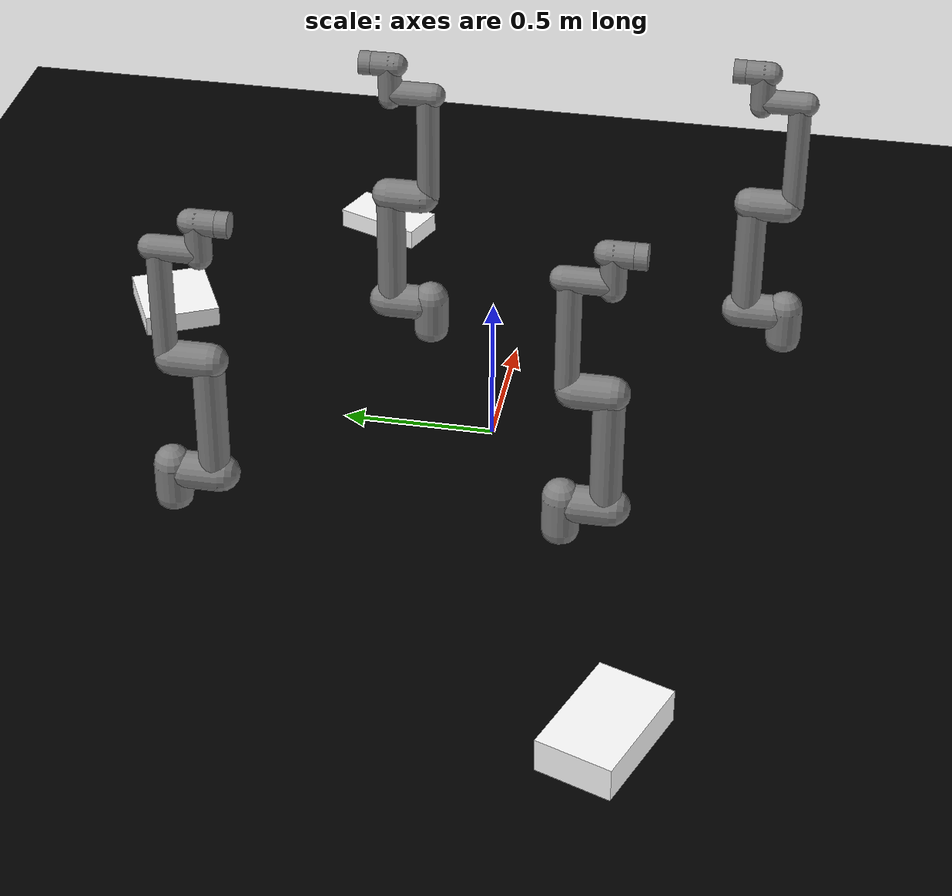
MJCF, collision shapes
<mujoco model="ur5e scene">

  <include file="/home/tapasdeveloper/Desktop/msc_thesis/wenkai/mujoco_simulation/unified_scene/ur5e_4.xml" />
  <include file="/home/tapasdeveloper/Desktop/msc_thesis/wenkai/mujoco_simulation/unified_scene/objs_3.xml" />

  <statistic center="0.3 0 0.4" extent="0.8" />

  <visual>
    <headlight diffuse="0.6 0.6 0.6" ambient="0.1 0.1 0.1" specular="0 0 0" />
    <rgba haze="0.15 0.25 0.35 1" />
    <global azimuth="120" elevation="-20" />
  </visual>

  <asset>
    <texture type="skybox" builtin="gradient" rgb1="0.3 0.5 0.7" rgb2="0 0 0" width="512" height="3072" />
    <texture type="2d" name="groundplane" builtin="checker" mark="edge" rgb1="0.2 0.3 0.4" rgb2="0.1 0.2 0.3" markrgb="0.8 0.8 0.8" width="300" height="300" />
    <material name="groundplane" texture="groundplane" texuniform="true" texrepeat="5 5" reflectance="0.2" />
  </asset>

  <worldbody>
    <light pos="0 0 1.5" dir="0 0 -1" directional="true" />
    <geom name="floor" size="0 0 0.05" type="plane" material="groundplane" />

    <body name="invisible_floor" pos="0 0 0.025">
      <geom type="box" size="10 10 0.01" rgba="0 0 0 0" contype="1" conaffinity="1" />
    </body>
  </worldbody>

  <contact>
    <exclude body1="base" body2="invisible_floor" />
    <exclude body1="base_1" body2="invisible_floor" />
    <exclude body1="base_2" body2="invisible_floor" />
    <exclude body1="base_3" body2="invisible_floor" />
    <exclude body1="shoulder_link" body2="invisible_floor" />
    <exclude body1="shoulder_link_1" body2="invisible_floor" />
    <exclude body1="shoulder_link_2" body2="invisible_floor" />
    <exclude body1="shoulder_link_3" body2="invisible_floor" />
  </contact>
</mujoco>

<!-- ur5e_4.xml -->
<mujoco model="ur5e">
  <compiler angle="radian" meshdir="ur5e_assets" autolimits="true" />

  <option integrator="implicitfast" />

  <default>
    <default class="ur5e">
      <material specular="0.5" shininess="0.25" />
      <joint axis="0 1 0" range="-6.28319 6.28319" armature="0.1" />
      <general gaintype="fixed" biastype="affine" ctrlrange="-6.2831 6.2831" gainprm="2000" biasprm="0 -2000 -400" forcerange="-150 150" />
      <default class="size3">
        <default class="size3_limited">
          <joint range="-3.1415 3.1415" />
          <general ctrlrange="-3.1415 3.1415" />
        </default>
      </default>
      <default class="size1">
        <general gainprm="500" biasprm="0 -500 -100" forcerange="-28 28" />
      </default>
      <default class="visual">
        <geom type="mesh" contype="0" conaffinity="0" group="2" />
      </default>
      <default class="collision">
        <geom type="capsule" group="3" />
        <default class="eef_collision">
          <geom type="cylinder" />
        </default>
      </default>
      <site size="0.001" rgba="0.5 0.5 0.5 0.3" group="4" />
    </default>
  </default>

  <asset>
    <material class="ur5e" name="black" rgba="0.033 0.033 0.033 1" />
    <material class="ur5e" name="jointgray" rgba="0.278 0.278 0.278 1" />
    <material class="ur5e" name="linkgray" rgba="0.82 0.82 0.82 1" />
    <material class="ur5e" name="urblue" rgba="0.49 0.678 0.8 1" />

    <mesh file="base_0.obj" />
    <mesh file="base_1.obj" />
    <mesh file="shoulder_0.obj" />
    <mesh file="shoulder_1.obj" />
    <mesh file="shoulder_2.obj" />
    <mesh file="upperarm_0.obj" />
    <mesh file="upperarm_1.obj" />
    <mesh file="upperarm_2.obj" />
    <mesh file="upperarm_3.obj" />
    <mesh file="forearm_0.obj" />
    <mesh file="forearm_1.obj" />
    <mesh file="forearm_2.obj" />
    <mesh file="forearm_3.obj" />
    <mesh file="wrist1_0.obj" />
    <mesh file="wrist1_1.obj" />
    <mesh file="wrist1_2.obj" />
    <mesh file="wrist2_0.obj" />
    <mesh file="wrist2_1.obj" />
    <mesh file="wrist2_2.obj" />
    <mesh file="wrist3.obj" />
  </asset>

  <worldbody>
    <light name="spotlight" mode="targetbodycom" target="wrist_2_link" pos="0 -1 2" />
    <body name="base" pos="0.6598434875933261 -0.9163550373007783 0.0" quat="6.123233995736766e-17 0.0 0.0 1.0" childclass="ur5e">
      <inertial mass="4.0" pos="0 0 0" diaginertia="0.00443333156 0.00443333156 0.0072" />
      <geom mesh="base_0" material="black" class="visual" />
      <geom mesh="base_1" material="jointgray" class="visual" />
      <body name="shoulder_link" pos="0 0 0.163" quat="0 0 0 1">
        <inertial mass="3.7" pos="0 0 0" diaginertia="0.0102675 0.0102675 0.00666" />
        <joint name="shoulder_pan_joint" class="size3" axis="0 0 1" />
        <geom mesh="shoulder_0" material="urblue" class="visual" />
        <geom mesh="shoulder_1" material="black" class="visual" />
        <geom mesh="shoulder_2" material="jointgray" class="visual" />
        <geom class="collision" size="0.06 0.06" pos="0 0 -0.04" />
        <body name="upper_arm_link" pos="0 0.138 0" quat="1 0 0 0">
          <inertial mass="8.393" pos="0 0 0.2125" diaginertia="0.133886 0.133886 0.0151074" />
          <joint name="shoulder_lift_joint" class="size3" />
          <geom mesh="upperarm_0" material="linkgray" class="visual" />
          <geom mesh="upperarm_1" material="black" class="visual" />
          <geom mesh="upperarm_2" material="jointgray" class="visual" />
          <geom mesh="upperarm_3" material="urblue" class="visual" />
          <geom class="collision" pos="0 -0.04 0" quat="1 1 0 0" size="0.06 0.06" />
          <geom class="collision" size="0.05 0.2" pos="0 0 0.2" />
          <body name="forearm_link" pos="0 -0.131 0.425">
            <inertial mass="2.275" pos="0 0 0.196" diaginertia="0.0311796 0.0311796 0.004095" />
            <joint name="elbow_joint" class="size3_limited" />
            <geom mesh="forearm_0" material="urblue" class="visual" />
            <geom mesh="forearm_1" material="linkgray" class="visual" />
            <geom mesh="forearm_2" material="black" class="visual" />
            <geom mesh="forearm_3" material="jointgray" class="visual" />
            <geom class="collision" pos="0 0.08 0" quat="1 1 0 0" size="0.055 0.06" />
            <geom class="collision" size="0.038 0.19" pos="0 0 0.2" />
            <body name="wrist_1_link" pos="0 0 0.392" quat="1 0 0 0">
              <inertial mass="1.219" pos="0 0.127 0" diaginertia="0.0025599 0.0025599 0.0021942" />
              <joint name="wrist_1_joint" class="size1" />
              <geom mesh="wrist1_0" material="black" class="visual" />
              <geom mesh="wrist1_1" material="urblue" class="visual" />
              <geom mesh="wrist1_2" material="jointgray" class="visual" />
              <geom class="collision" pos="0 0.05 0" quat="1 1 0 0" size="0.04 0.07" />
              <body name="wrist_2_link" pos="0 0.127 0">
                <inertial mass="1.219" pos="0 0 0.1" diaginertia="0.0025599 0.0025599 0.0021942" />
                <joint name="wrist_2_joint" axis="0 0 1" class="size1" />
                <geom mesh="wrist2_0" material="black" class="visual" />
                <geom mesh="wrist2_1" material="urblue" class="visual" />
                <geom mesh="wrist2_2" material="jointgray" class="visual" />
                <geom class="collision" size="0.04 0.06" pos="0 0 0.04" />
                <geom class="collision" pos="0 0.02 0.1" quat="1 1 0 0" size="0.04 0.04" />
                <body name="wrist_3_link" pos="0 0 0.1">
                  <inertial mass="0.1889" pos="0 0.0771683 0" quat="1 0 0 1" diaginertia="0.000132134 9.90863e-05 9.90863e-05" />
                  <joint name="wrist_3_joint" class="size1" />
                  <geom material="linkgray" mesh="wrist3" class="visual" />
                  <geom class="eef_collision" pos="0 0.08 0" quat="1 1 0 0" size="0.04 0.02" />
                  <site name="attachment_site" pos="0 0.1 0" quat="-1 1 0 0" />
                </body>
              </body>
            </body>
          </body>
        </body>
      </body>
    </body>

    <body name="base_1" pos="-0.6022929315226149 0.9240593326658415 0.0" quat="1.0 0.0 0.0 0.0" childclass="ur5e">
      <inertial mass="4.0" pos="0 0 0" diaginertia="0.00443333156 0.00443333156 0.0072" />
      <geom mesh="base_0" material="black" class="visual" />
      <geom mesh="base_1" material="jointgray" class="visual" />
      <body name="shoulder_link_1" pos="0 0 0.163" quat="0 0 0 1">
        <inertial mass="3.7" pos="0 0 0" diaginertia="0.0102675 0.0102675 0.00666" />
        <joint name="shoulder_pan_joint_1" class="size3" axis="0 0 1" />
        <geom mesh="shoulder_0" material="urblue" class="visual" />
        <geom mesh="shoulder_1" material="black" class="visual" />
        <geom mesh="shoulder_2" material="jointgray" class="visual" />
        <geom class="collision" size="0.06 0.06" pos="0 0 -0.04" />
        <body name="upper_arm_link_1" pos="0 0.138 0" quat="1 0 0 0">
          <inertial mass="8.393" pos="0 0 0.2125" diaginertia="0.133886 0.133886 0.0151074" />
          <joint name="shoulder_lift_joint_1" class="size3" />
          <geom mesh="upperarm_0" material="linkgray" class="visual" />
          <geom mesh="upperarm_1" material="black" class="visual" />
          <geom mesh="upperarm_2" material="jointgray" class="visual" />
          <geom mesh="upperarm_3" material="urblue" class="visual" />
          <geom class="collision" pos="0 -0.04 0" quat="1 1 0 0" size="0.06 0.06" />
          <geom class="collision" size="0.05 0.2" pos="0 0 0.2" />
          <body name="forearm_link_1" pos="0 -0.131 0.425">
            <inertial mass="2.275" pos="0 0 0.196" diaginertia="0.0311796 0.0311796 0.004095" />
            <joint name="elbow_joint_1" class="size3_limited" />
            <geom mesh="forearm_0" material="urblue" class="visual" />
            <geom mesh="forearm_1" material="linkgray" class="visual" />
            <geom mesh="forearm_2" material="black" class="visual" />
            <geom mesh="forearm_3" material="jointgray" class="visual" />
            <geom class="collision" pos="0 0.08 0" quat="1 1 0 0" size="0.055 0.06" />
            <geom class="collision" size="0.038 0.19" pos="0 0 0.2" />
            <body name="wrist_1_link_1" pos="0 0 0.392" quat="1 0 0 0">
              <inertial mass="1.219" pos="0 0.127 0" diaginertia="0.0025599 0.0025599 0.0021942" />
              <joint name="wrist_1_joint_1" class="size1" />
              <geom mesh="wrist1_0" material="black" class="visual" />
              <geom mesh="wrist1_1" material="urblue" class="visual" />
              <geom mesh="wrist1_2" material="jointgray" class="visual" />
              <geom class="collision" pos="0 0.05 0" quat="1 1 0 0" size="0.04 0.07" />
              <body name="wrist_2_link_1" pos="0 0.127 0">
                <inertial mass="1.219" pos="0 0 0.1" diaginertia="0.0025599 0.0025599 0.0021942" />
                <joint name="wrist_2_joint_1" axis="0 0 1" class="size1" />
                <geom mesh="wrist2_0" material="black" class="visual" />
                <geom mesh="wrist2_1" material="urblue" class="visual" />
                <geom mesh="wrist2_2" material="jointgray" class="visual" />
                <geom class="collision" size="0.04 0.06" pos="0 0 0.04" />
                <geom class="collision" pos="0 0.02 0.1" quat="1 1 0 0" size="0.04 0.04" />
                <body name="wrist_3_link_1" pos="0 0 0.1">
                  <inertial mass="0.1889" pos="0 0.0771683 0" quat="1 0 0 1" diaginertia="0.000132134 9.90863e-05 9.90863e-05" />
                  <joint name="wrist_3_joint_1" class="size1" />
                  <geom material="linkgray" mesh="wrist3" class="visual" />
                  <geom class="eef_collision" pos="0 0.08 0" quat="1 1 0 0" size="0.04 0.02" />
                  <site name="attachment_site_1" pos="0 0.1 0" quat="-1 1 0 0" />
                </body>
              </body>
            </body>
          </body>
        </body>
      </body>
    </body>

    <body name="base_2" pos="-0.5556239851561715 -0.3118939242859937 0.0" quat="1.0 0.0 0.0 0.0" childclass="ur5e">
      <inertial mass="4.0" pos="0 0 0" diaginertia="0.00443333156 0.00443333156 0.0072" />
      <geom mesh="base_0" material="black" class="visual" />
      <geom mesh="base_1" material="jointgray" class="visual" />
      <body name="shoulder_link_2" pos="0 0 0.163" quat="0 0 0 1">
        <inertial mass="3.7" pos="0 0 0" diaginertia="0.0102675 0.0102675 0.00666" />
        <joint name="shoulder_pan_joint_2" class="size3" axis="0 0 1" />
        <geom mesh="shoulder_0" material="urblue" class="visual" />
        <geom mesh="shoulder_1" material="black" class="visual" />
        <geom mesh="shoulder_2" material="jointgray" class="visual" />
        <geom class="collision" size="0.06 0.06" pos="0 0 -0.04" />
        <body name="upper_arm_link_2" pos="0 0.138 0" quat="1 0 0 0">
          <inertial mass="8.393" pos="0 0 0.2125" diaginertia="0.133886 0.133886 0.0151074" />
          <joint name="shoulder_lift_joint_2" class="size3" />
          <geom mesh="upperarm_0" material="linkgray" class="visual" />
          <geom mesh="upperarm_1" material="black" class="visual" />
          <geom mesh="upperarm_2" material="jointgray" class="visual" />
          <geom mesh="upperarm_3" material="urblue" class="visual" />
          <geom class="collision" pos="0 -0.04 0" quat="1 1 0 0" size="0.06 0.06" />
          <geom class="collision" size="0.05 0.2" pos="0 0 0.2" />
          <body name="forearm_link_2" pos="0 -0.131 0.425">
            <inertial mass="2.275" pos="0 0 0.196" diaginertia="0.0311796 0.0311796 0.004095" />
            <joint name="elbow_joint_2" class="size3_limited" />
            <geom mesh="forearm_0" material="urblue" class="visual" />
            <geom mesh="forearm_1" material="linkgray" class="visual" />
            <geom mesh="forearm_2" material="black" class="visual" />
            <geom mesh="forearm_3" material="jointgray" class="visual" />
            <geom class="collision" pos="0 0.08 0" quat="1 1 0 0" size="0.055 0.06" />
            <geom class="collision" size="0.038 0.19" pos="0 0 0.2" />
            <body name="wrist_1_link_2" pos="0 0 0.392" quat="1 0 0 0">
              <inertial mass="1.219" pos="0 0.127 0" diaginertia="0.0025599 0.0025599 0.0021942" />
              <joint name="wrist_1_joint_2" class="size1" />
              <geom mesh="wrist1_0" material="black" class="visual" />
              <geom mesh="wrist1_1" material="urblue" class="visual" />
              <geom mesh="wrist1_2" material="jointgray" class="visual" />
              <geom class="collision" pos="0 0.05 0" quat="1 1 0 0" size="0.04 0.07" />
              <body name="wrist_2_link_2" pos="0 0.127 0">
                <inertial mass="1.219" pos="0 0 0.1" diaginertia="0.0025599 0.0025599 0.0021942" />
                <joint name="wrist_2_joint_2" axis="0 0 1" class="size1" />
                <geom mesh="wrist2_0" material="black" class="visual" />
                <geom mesh="wrist2_1" material="urblue" class="visual" />
                <geom mesh="wrist2_2" material="jointgray" class="visual" />
                <geom class="collision" size="0.04 0.06" pos="0 0 0.04" />
                <geom class="collision" pos="0 0.02 0.1" quat="1 1 0 0" size="0.04 0.04" />
                <body name="wrist_3_link_2" pos="0 0 0.1">
                  <inertial mass="0.1889" pos="0 0.0771683 0" quat="1 0 0 1" diaginertia="0.000132134 9.90863e-05 9.90863e-05" />
                  <joint name="wrist_3_joint_2" class="size1" />
                  <geom material="linkgray" mesh="wrist3" class="visual" />
                  <geom class="eef_collision" pos="0 0.08 0" quat="1 1 0 0" size="0.04 0.02" />
                  <site name="attachment_site_2" pos="0 0.1 0" quat="-1 1 0 0" />
                </body>
              </body>
            </body>
          </body>
        </body>
      </body>
    </body>

    <body name="base_3" pos="0.4980734290854602 0.3041896289209305 0.0" quat="6.123233995736766e-17 0.0 0.0 1.0" childclass="ur5e">
      <inertial mass="4.0" pos="0 0 0" diaginertia="0.00443333156 0.00443333156 0.0072" />
      <geom mesh="base_0" material="black" class="visual" />
      <geom mesh="base_1" material="jointgray" class="visual" />
      <body name="shoulder_link_3" pos="0 0 0.163" quat="0 0 0 1">
        <inertial mass="3.7" pos="0 0 0" diaginertia="0.0102675 0.0102675 0.00666" />
        <joint name="shoulder_pan_joint_3" class="size3" axis="0 0 1" />
        <geom mesh="shoulder_0" material="urblue" class="visual" />
        <geom mesh="shoulder_1" material="black" class="visual" />
        <geom mesh="shoulder_2" material="jointgray" class="visual" />
        <geom class="collision" size="0.06 0.06" pos="0 0 -0.04" />
        <body name="upper_arm_link_3" pos="0 0.138 0" quat="1 0 0 0">
          <inertial mass="8.393" pos="0 0 0.2125" diaginertia="0.133886 0.133886 0.0151074" />
          <joint name="shoulder_lift_joint_3" class="size3" />
          <geom mesh="upperarm_0" material="linkgray" class="visual" />
          <geom mesh="upperarm_1" material="black" class="visual" />
          <geom mesh="upperarm_2" material="jointgray" class="visual" />
          <geom mesh="upperarm_3" material="urblue" class="visual" />
          <geom class="collision" pos="0 -0.04 0" quat="1 1 0 0" size="0.06 0.06" />
          <geom class="collision" size="0.05 0.2" pos="0 0 0.2" />
          <body name="forearm_link_3" pos="0 -0.131 0.425">
            <inertial mass="2.275" pos="0 0 0.196" diaginertia="0.0311796 0.0311796 0.004095" />
            <joint name="elbow_joint_3" class="size3_limited" />
            <geom mesh="forearm_0" material="urblue" class="visual" />
            <geom mesh="forearm_1" material="linkgray" class="visual" />
            <geom mesh="forearm_2" material="black" class="visual" />
            <geom mesh="forearm_3" material="jointgray" class="visual" />
            <geom class="collision" pos="0 0.08 0" quat="1 1 0 0" size="0.055 0.06" />
            <geom class="collision" size="0.038 0.19" pos="0 0 0.2" />
            <body name="wrist_1_link_3" pos="0 0 0.392" quat="1 0 0 0">
              <inertial mass="1.219" pos="0 0.127 0" diaginertia="0.0025599 0.0025599 0.0021942" />
              <joint name="wrist_1_joint_3" class="size1" />
              <geom mesh="wrist1_0" material="black" class="visual" />
              <geom mesh="wrist1_1" material="urblue" class="visual" />
              <geom mesh="wrist1_2" material="jointgray" class="visual" />
              <geom class="collision" pos="0 0.05 0" quat="1 1 0 0" size="0.04 0.07" />
              <body name="wrist_2_link_3" pos="0 0.127 0">
                <inertial mass="1.219" pos="0 0 0.1" diaginertia="0.0025599 0.0025599 0.0021942" />
                <joint name="wrist_2_joint_3" axis="0 0 1" class="size1" />
                <geom mesh="wrist2_0" material="black" class="visual" />
                <geom mesh="wrist2_1" material="urblue" class="visual" />
                <geom mesh="wrist2_2" material="jointgray" class="visual" />
                <geom class="collision" size="0.04 0.06" pos="0 0 0.04" />
                <geom class="collision" pos="0 0.02 0.1" quat="1 1 0 0" size="0.04 0.04" />
                <body name="wrist_3_link_3" pos="0 0 0.1">
                  <inertial mass="0.1889" pos="0 0.0771683 0" quat="1 0 0 1" diaginertia="0.000132134 9.90863e-05 9.90863e-05" />
                  <joint name="wrist_3_joint_3" class="size1" />
                  <geom material="linkgray" mesh="wrist3" class="visual" />
                  <geom class="eef_collision" pos="0 0.08 0" quat="1 1 0 0" size="0.04 0.02" />
                  <site name="attachment_site_3" pos="0 0.1 0" quat="-1 1 0 0" />
                </body>
              </body>
            </body>
          </body>
        </body>
      </body>
    </body>
  </worldbody>

  <actuator>
    <general class="size3" name="shoulder_pan" joint="shoulder_pan_joint" />
    <general class="size3" name="shoulder_lift" joint="shoulder_lift_joint" />
    <general class="size3_limited" name="elbow" joint="elbow_joint" />
    <general class="size1" name="wrist_1" joint="wrist_1_joint" />
    <general class="size1" name="wrist_2" joint="wrist_2_joint" />
    <general class="size1" name="wrist_3" joint="wrist_3_joint" />
    <general class="size3" name="shoulder_pan_1" joint="shoulder_pan_joint_1" />
    <general class="size3" name="shoulder_lift_1" joint="shoulder_lift_joint_1" />
    <general class="size3_limited" name="elbow_1" joint="elbow_joint_1" />
    <general class="size1" name="wrist_1_1" joint="wrist_1_joint_1" />
    <general class="size1" name="wrist_2_1" joint="wrist_2_joint_1" />
    <general class="size1" name="wrist_3_1" joint="wrist_3_joint_1" />
    <general class="size3" name="shoulder_pan_2" joint="shoulder_pan_joint_2" />
    <general class="size3" name="shoulder_lift_2" joint="shoulder_lift_joint_2" />
    <general class="size3_limited" name="elbow_2" joint="elbow_joint_2" />
    <general class="size1" name="wrist_1_2" joint="wrist_1_joint_2" />
    <general class="size1" name="wrist_2_2" joint="wrist_2_joint_2" />
    <general class="size1" name="wrist_3_2" joint="wrist_3_joint_2" />
    <general class="size3" name="shoulder_pan_3" joint="shoulder_pan_joint_3" />
    <general class="size3" name="shoulder_lift_3" joint="shoulder_lift_joint_3" />
    <general class="size3_limited" name="elbow_3" joint="elbow_joint_3" />
    <general class="size1" name="wrist_1_3" joint="wrist_1_joint_3" />
    <general class="size1" name="wrist_2_3" joint="wrist_2_joint_3" />
    <general class="size1" name="wrist_3_3" joint="wrist_3_joint_3" />
  </actuator>

</mujoco>

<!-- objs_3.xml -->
<mujoco>
  <compiler angle="radian" />

  <visual>
    <headlight ambient="0.1 0.1 0.1" />
  </visual>

  <asset>
    <material name="white" rgba="1 1 1 1" />
    <material name="goal" rgba="0 0 0 0.3" />
  </asset>

  <option gravity="0 0 -9.8" />
  <worldbody>
    <body name="obj1" pos="1.1609277717764082 0.5957068546926183 0.08489235136276457" quat="-0.6938597988765497 0.1362298774881741 0.6938597988503938 0.1362298774933104">
      <joint type="free" />
      <inertial pos="0 0 0" mass="1" diaginertia="0.01 0.01 0.01" />
      <geom type="box" size="0.035 0.155 0.08" material="white" />

    </body>

    <body name="obj2" pos="0.47031155934105484 1.2272188207582364 0.08489235136745046" quat="0.8494913641243402 9.467807375954333e-18 -1.0052635306173794e-17 -0.5276025230020868">
      <joint type="free" />
      <inertial pos="0 0 0" mass="1" diaginertia="0.01 0.01 0.01" />
      <geom type="box" size="0.13 0.145 0.035" material="white" />

    </body>

    <body name="obj3" pos="-1.5032448138690364 -0.5801843406402204 0.10489235136745055" quat="-0.12610653555750317 -0.6957708974150073 0.12610653555750348 -0.6957708974150076">
      <joint type="free" />
      <inertial pos="0 0 0" mass="1" diaginertia="0.01 0.01 0.01" />
      <geom type="box" size="0.055 0.12 0.19" material="white" />

    </body>

  </worldbody>
</mujoco>
